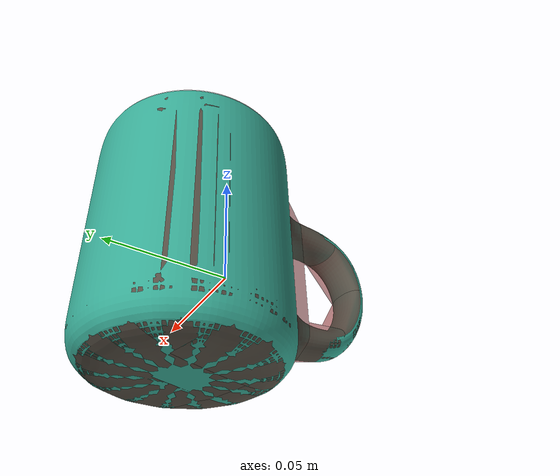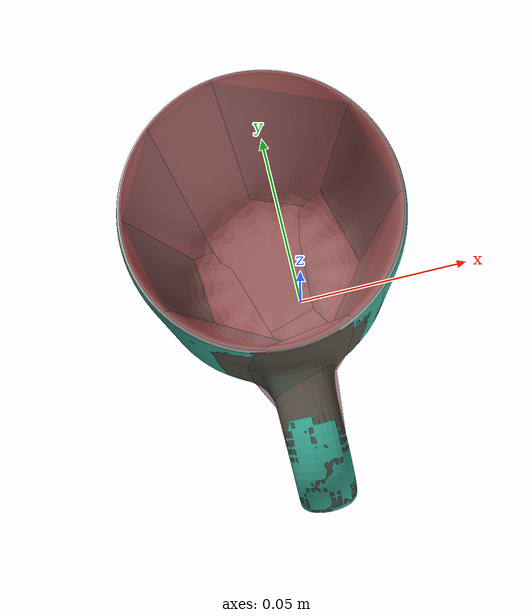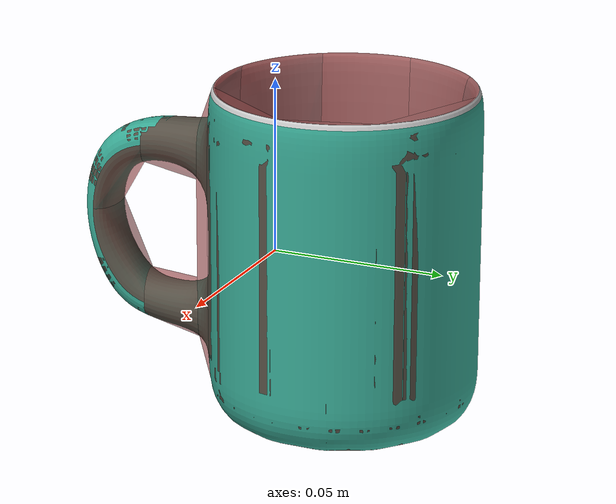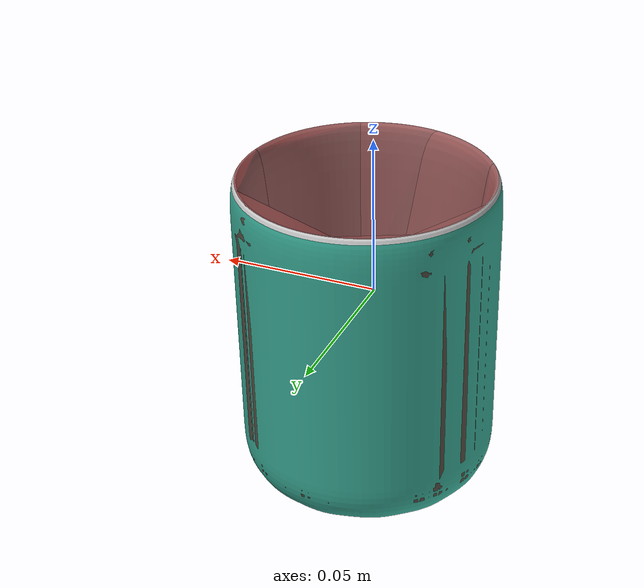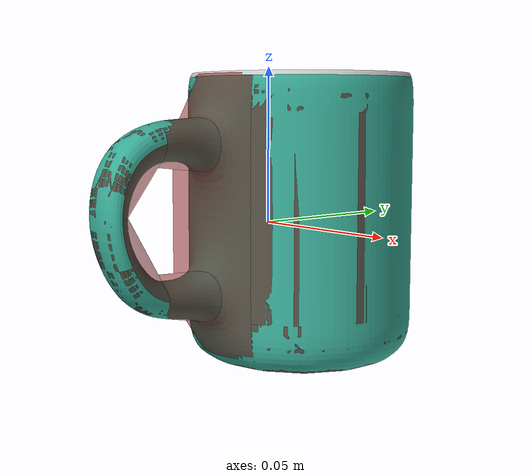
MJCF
<mujoco model="mug_2">
  <asset>
    <mesh file="visual/model_normalized_0.obj" name="model_normalized_0_vis" scale="0.115 0.115 0.115" refquat="0.14673047445536153 0.0 0.0 0.989176509964781"/>
    <mesh file="visual/model_normalized_1.obj" name="model_normalized_1_vis" scale="0.115 0.115 0.115" refquat="0.14673047445536153 0.0 0.0 0.989176509964781"/>
    <material name="Mat.003" specular="0.5" shininess="0.00226274" rgba="0.221100 0.670000 0.587702 1.0"/>
    <material name="material.083" specular="0.5" shininess="0.00226274" rgba="0.800000 0.800000 0.800000 1.0"/>
    <mesh file="collision/collision_mesh_collision_0.obj" name="mug_collision_mesh_0" scale="0.115 0.115 0.115" refquat="0.14673047445536153 0.0 0.0 0.989176509964781"/>
    <mesh file="collision/collision_mesh_collision_1.obj" name="mug_collision_mesh_1" scale="0.115 0.115 0.115" refquat="0.14673047445536153 0.0 0.0 0.989176509964781"/>
    <mesh file="collision/collision_mesh_collision_2.obj" name="mug_collision_mesh_2" scale="0.115 0.115 0.115" refquat="0.14673047445536153 0.0 0.0 0.989176509964781"/>
    <mesh file="collision/collision_mesh_collision_3.obj" name="mug_collision_mesh_3" scale="0.115 0.115 0.115" refquat="0.14673047445536153 0.0 0.0 0.989176509964781"/>
    <mesh file="collision/collision_mesh_collision_4.obj" name="mug_collision_mesh_4" scale="0.115 0.115 0.115" refquat="0.14673047445536153 0.0 0.0 0.989176509964781"/>
    <mesh file="collision/collision_mesh_collision_5.obj" name="mug_collision_mesh_5" scale="0.115 0.115 0.115" refquat="0.14673047445536153 0.0 0.0 0.989176509964781"/>
    <mesh file="collision/collision_mesh_collision_6.obj" name="mug_collision_mesh_6" scale="0.115 0.115 0.115" refquat="0.14673047445536153 0.0 0.0 0.989176509964781"/>
    <mesh file="collision/collision_mesh_collision_7.obj" name="mug_collision_mesh_7" scale="0.115 0.115 0.115" refquat="0.14673047445536153 0.0 0.0 0.989176509964781"/>
    <mesh file="collision/collision_mesh_collision_8.obj" name="mug_collision_mesh_8" scale="0.115 0.115 0.115" refquat="0.14673047445536153 0.0 0.0 0.989176509964781"/>
    <mesh file="collision/collision_mesh_collision_9.obj" name="mug_collision_mesh_9" scale="0.115 0.115 0.115" refquat="0.14673047445536153 0.0 0.0 0.989176509964781"/>
    <mesh file="collision/collision_mesh_collision_10.obj" name="mug_collision_mesh_10" scale="0.115 0.115 0.115" refquat="0.14673047445536153 0.0 0.0 0.989176509964781"/>
    <mesh file="collision/collision_mesh_collision_11.obj" name="mug_collision_mesh_11" scale="0.115 0.115 0.115" refquat="0.14673047445536153 0.0 0.0 0.989176509964781"/>
    <mesh file="collision/collision_mesh_collision_12.obj" name="mug_collision_mesh_12" scale="0.115 0.115 0.115" refquat="0.14673047445536153 0.0 0.0 0.989176509964781"/>
    <mesh file="collision/collision_mesh_collision_13.obj" name="mug_collision_mesh_13" scale="0.115 0.115 0.115" refquat="0.14673047445536153 0.0 0.0 0.989176509964781"/>
    <mesh file="collision/collision_mesh_collision_14.obj" name="mug_collision_mesh_14" scale="0.115 0.115 0.115" refquat="0.14673047445536153 0.0 0.0 0.989176509964781"/>
    <mesh file="collision/collision_mesh_collision_15.obj" name="mug_collision_mesh_15" scale="0.115 0.115 0.115" refquat="0.14673047445536153 0.0 0.0 0.989176509964781"/>
  </asset>
  <default>
    <default class="region">
      <geom group="1" conaffinity="0" contype="0" rgba="0 1 0 0"/>
    </default>
    <default class="collision">
      <geom group="0" rgba="0.5 0 0 0.5" density="1000.0"/>
    </default>
  </default>
  <worldbody>
    <body>
      <body name="object">
        <geom solimp="0.998 0.998 0.001" solref="0.001 1" density="100" friction="0.95 0.3 0.1" type="mesh" mesh="model_normalized_0_vis" conaffinity="0" contype="0" group="1" material="material.083"/>
        <geom solimp="0.998 0.998 0.001" solref="0.001 1" density="100" friction="0.95 0.3 0.1" type="mesh" mesh="model_normalized_1_vis" conaffinity="0" contype="0" group="1" material="Mat.003"/>
        <geom class="region" name="reg_bbox" type="box" pos="-0.0056723538469714155 -0.002147455435544676 0.0" size="0.03796271731923356 0.05880252692087761 0.048383291050000006"/>
        <geom mesh="mug_collision_mesh_0" type="mesh" class="collision"/>
        <geom mesh="mug_collision_mesh_1" type="mesh" class="collision"/>
        <geom mesh="mug_collision_mesh_2" type="mesh" class="collision"/>
        <geom mesh="mug_collision_mesh_3" type="mesh" class="collision"/>
        <geom mesh="mug_collision_mesh_4" type="mesh" class="collision"/>
        <geom mesh="mug_collision_mesh_5" type="mesh" class="collision"/>
        <geom mesh="mug_collision_mesh_6" type="mesh" class="collision"/>
        <geom mesh="mug_collision_mesh_7" type="mesh" class="collision"/>
        <geom mesh="mug_collision_mesh_8" type="mesh" class="collision"/>
        <geom mesh="mug_collision_mesh_9" type="mesh" class="collision"/>
        <geom mesh="mug_collision_mesh_10" type="mesh" class="collision"/>
        <geom mesh="mug_collision_mesh_11" type="mesh" class="collision"/>
        <geom mesh="mug_collision_mesh_12" type="mesh" class="collision"/>
        <geom mesh="mug_collision_mesh_13" type="mesh" class="collision"/>
        <geom mesh="mug_collision_mesh_14" type="mesh" class="collision"/>
        <geom mesh="mug_collision_mesh_15" type="mesh" class="collision"/>
        <geom rgba="0 0 0 0" size="0.036 0.035" pos="-0.005 0.017 0.0" type="cylinder" name="liquid" class="region"/>
        <geom rgba="0 0 0 0 " size="0.0275 0.039" pos="-0.005 0.018 0.008" type="cylinder" name="reg_int" class="region"/>
      </body>
    </body>
  </worldbody>
</mujoco>
